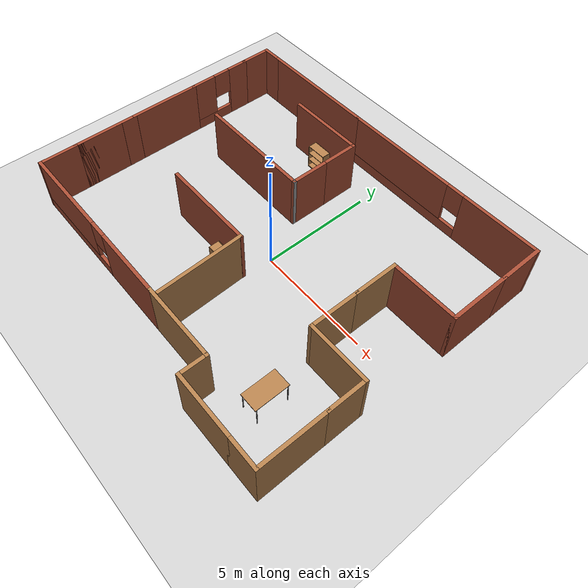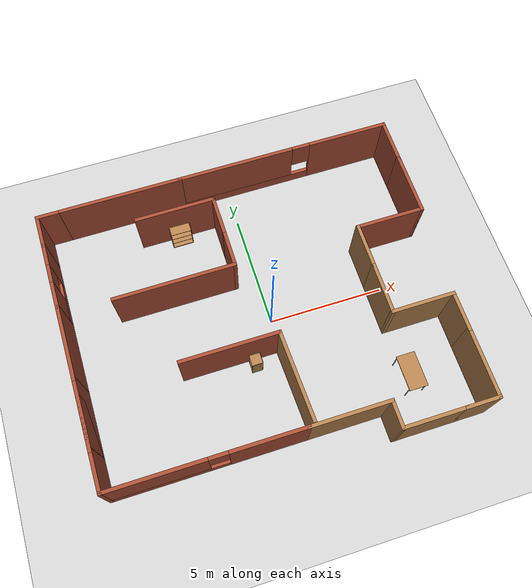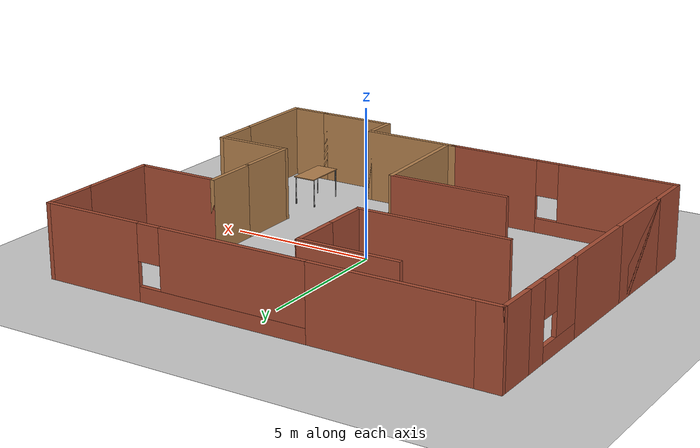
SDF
<sdf version="1.7">
 <world name="default">
  <light name="sun" type="directional">
   <pose>0 0 10 0 -0 0</pose>
   <diffuse>0.8 0.8 0.8 1</diffuse>
   <specular>0.2 0.2 0.2 1</specular>
   <attenuation>
    <range>1000</range>
    <constant>0.9</constant>
    <linear>0.01</linear>
    <quadratic>0.001</quadratic>
   </attenuation>
   <direction>-0.5 0.1 -0.9</direction>
   <spot><inner_angle>0</inner_angle><outer_angle>0</outer_angle><falloff>0</falloff></spot>
  </light>
  <model name="ground_plane">
   <static>1</static>
   <link name="link">
    <collision name="collision">
     <geometry><plane><normal>0 0 1</normal><size>100 100</size></plane></geometry>
     <surface>
      <contact><collide_bitmask>65535</collide_bitmask></contact>
      <friction><ode><mu>100</mu><mu2>50</mu2></ode></friction>
     </surface>
    </collision>
    <visual name="visual">
     <cast_shadows>0</cast_shadows>
     <geometry><plane><normal>0 0 1</normal><size>100 100</size></plane></geometry>
     <material>
      <script><uri>file://media/materials/scripts/gazebo.material</uri><name>Gazebo/Grey</name></script>
     </material>
    </visual>
   </link>
  </model>
  <gravity>0 0 -9.8</gravity>
  <magnetic_field>6e-06 2.3e-05 -4.2e-05</magnetic_field>
  <atmosphere type="adiabatic"/>
  <physics type="ode">
   <max_step_size>0.001</max_step_size>
   <real_time_factor>1</real_time_factor>
   <real_time_update_rate>1000</real_time_update_rate>
  </physics>
  <scene><ambient>0.4 0.4 0.4 1</ambient><background>0.7 0.7 0.7 1</background><shadows>false</shadows></scene>
  <spherical_coordinates>
   <surface_model>EARTH_WGS84</surface_model>
   <latitude_deg>0</latitude_deg>
   <longitude_deg>0</longitude_deg>
   <elevation>0</elevation>
   <heading_deg>0</heading_deg>
  </spherical_coordinates>
  <model name="cafe.world">
   <pose>-0.490708 0.112147 0 0 -0 0</pose>
   <link name="Wall_10">
    <collision name="Wall_10_Collision">
     <geometry><box><size>2.75 0.15 2.5</size></box></geometry>
     <pose>0 0 1.25 0 -0 0</pose>
    </collision>
    <visual name="Wall_10_Visual">
     <pose>0 0 1.25 0 -0 0</pose>
     <geometry><box><size>2.75 0.15 2.5</size></box></geometry>
     <material>
      <script><uri>file://media/materials/scripts/gazebo.material</uri><name>Gazebo/Wood</name></script>
      <ambient>1 1 1 1</ambient>
     </material>
     <meta><layer>0</layer></meta>
    </visual>
    <pose>4.875 -6.425 0 0 -0 0</pose>
   </link>
   <link name="Wall_12">
    <collision name="Wall_12_Collision">
     <geometry><box><size>1.5 0.15 2.5</size></box></geometry>
     <pose>0 0 1.25 0 -0 0</pose>
    </collision>
    <visual name="Wall_12_Visual">
     <pose>0 0 1.25 0 -0 0</pose>
     <geometry><box><size>1.5 0.15 2.5</size></box></geometry>
     <material>
      <script><uri>file://media/materials/scripts/gazebo.material</uri><name>Gazebo/Wood</name></script>
      <ambient>1 1 1 1</ambient>
     </material>
     <meta><layer>0</layer></meta>
    </visual>
    <pose>6.85 -6.425 0 0 -0 0</pose>
   </link>
   <link name="Wall_13">
    <collision name="Wall_13_Collision">
     <geometry><box><size>3 0.15 2.5</size></box></geometry>
     <pose>0 0 1.25 0 -0 0</pose>
    </collision>
    <visual name="Wall_13_Visual">
     <pose>0 0 1.25 0 -0 0</pose>
     <geometry><box><size>3 0.15 2.5</size></box></geometry>
     <material>
      <script><uri>file://media/materials/scripts/gazebo.material</uri><name>Gazebo/Wood</name></script>
      <ambient>1 1 1 1</ambient>
     </material>
     <meta><layer>0</layer></meta>
    </visual>
    <pose>7.525 -5 0 0 -0 1.5708</pose>
   </link>
   <link name="Wall_16">
    <collision name="Wall_16_Collision">
     <geometry><box><size>1.75 0.15 2.5</size></box></geometry>
     <pose>0 0 1.25 0 -0 0</pose>
    </collision>
    <visual name="Wall_16_Visual">
     <pose>0 0 1.25 0 -0 0</pose>
     <geometry><box><size>1.75 0.15 2.5</size></box></geometry>
     <material>
      <script><uri>file://media/materials/scripts/gazebo.material</uri><name>Gazebo/Wood</name></script>
      <ambient>1 1 1 1</ambient>
     </material>
     <meta><layer>0</layer></meta>
    </visual>
    <pose>7.525 -2.775 0 0 -0 1.5708</pose>
   </link>
   <link name="Wall_18">
    <collision name="Wall_18_Collision">
     <geometry><box><size>2.75 0.15 2.5</size></box></geometry>
     <pose>0 0 1.25 0 -0 0</pose>
    </collision>
    <visual name="Wall_18_Visual">
     <pose>0 0 1.25 0 -0 0</pose>
     <geometry><box><size>2.75 0.15 2.5</size></box></geometry>
     <material>
      <script><uri>file://media/materials/scripts/gazebo.material</uri><name>Gazebo/Wood</name></script>
      <ambient>1 1 1 1</ambient>
     </material>
     <meta><layer>0</layer></meta>
    </visual>
    <pose>6.225 -1.975 0 0 -0 3.14159</pose>
   </link>
   <link name="Wall_20">
    <collision name="Wall_20_Collision">
     <geometry><box><size>2.25 0.15 2.5</size></box></geometry>
     <pose>0 0 1.25 0 -0 0</pose>
    </collision>
    <visual name="Wall_20_Visual">
     <pose>0 0 1.25 0 -0 0</pose>
     <geometry><box><size>2.25 0.15 2.5</size></box></geometry>
     <material>
      <script><uri>file://media/materials/scripts/gazebo.material</uri><name>Gazebo/Wood</name></script>
      <ambient>1 1 1 1</ambient>
     </material>
     <meta><layer>0</layer></meta>
    </visual>
    <pose>4.925 -0.925 0 0 -0 1.5708</pose>
   </link>
   <link name="Wall_22">
    <collision name="Wall_22_Collision">
     <geometry><box><size>2 0.15 2.5</size></box></geometry>
     <pose>0 0 1.25 0 -0 0</pose>
    </collision>
    <visual name="Wall_22_Visual">
     <pose>0 0 1.25 0 -0 0</pose>
     <geometry><box><size>2 0.15 2.5</size></box></geometry>
     <material>
      <script><uri>file://media/materials/scripts/gazebo.material</uri><name>Gazebo/Wood</name></script>
      <ambient>1 1 1 1</ambient>
     </material>
     <meta><layer>0</layer></meta>
    </visual>
    <pose>4.925 1.05 0 0 -0 1.5708</pose>
   </link>
   <link name="Wall_24">
    <collision name="Wall_24_Collision">
     <geometry><box><size>3 0.15 2.5</size></box></geometry>
     <pose>0 0 1.25 0 -0 0</pose>
    </collision>
    <visual name="Wall_24_Visual">
     <pose>0 0 1.25 0 -0 0</pose>
     <geometry><box><size>3 0.15 2.5</size></box></geometry>
     <material>
      <script><uri>file://media/materials/scripts/gazebo.material</uri><name>Gazebo/Bricks</name></script>
      <ambient>1 1 1 1</ambient>
     </material>
     <meta><layer>0</layer></meta>
    </visual>
    <pose>6.35 1.975 0 0 -0 0</pose>
   </link>
   <link name="Wall_25">
    <collision name="Wall_25_Collision">
     <geometry><box><size>2.75 0.15 2.5</size></box></geometry>
     <pose>0 0 1.25 0 -0 0</pose>
    </collision>
    <visual name="Wall_25_Visual">
     <pose>0 0 1.25 0 -0 0</pose>
     <geometry><box><size>2.75 0.15 2.5</size></box></geometry>
     <material>
      <script><uri>file://media/materials/scripts/gazebo.material</uri><name>Gazebo/Bricks</name></script>
      <ambient>1 1 1 1</ambient>
     </material>
     <meta><layer>0</layer></meta>
    </visual>
    <pose>7.775 3.275 0 0 -0 1.5708</pose>
   </link>
   <link name="Wall_27">
    <collision name="Wall_27_Collision">
     <geometry><box><size>2 0.15 2.5</size></box></geometry>
     <pose>0 0 1.25 0 -0 0</pose>
    </collision>
    <visual name="Wall_27_Visual">
     <pose>0 0 1.25 0 -0 0</pose>
     <geometry><box><size>2 0.15 2.5</size></box></geometry>
     <material>
      <script><uri>file://media/materials/scripts/gazebo.material</uri><name>Gazebo/Bricks</name></script>
      <ambient>1 1 1 1</ambient>
     </material>
     <meta><layer>0</layer></meta>
    </visual>
    <pose>7.775 5.5 0 0 -0 1.5708</pose>
   </link>
   <link name="Wall_28">
    <pose>3.1 6.425 0 0 -0 3.14159</pose>
    <visual name="Wall_28_Visual_0">
     <pose>-2.97975 0 1.25 0 -0 0</pose>
     <geometry><box><size>3.5405 0.15 2.5</size></box></geometry>
     <material>
      <script><uri>file://media/materials/scripts/gazebo.material</uri><name>Gazebo/Bricks</name></script>
      <ambient>1 1 1 1</ambient>
     </material>
     <meta><layer>0</layer></meta>
    </visual>
    <collision name="Wall_28_Collision_0">
     <geometry><box><size>3.5405 0.15 2.5</size></box></geometry>
     <pose>-2.97975 0 1.25 0 -0 0</pose>
    </collision>
    <visual name="Wall_28_Visual_1">
     <pose>1.77025 0 0.25 0 -0 0</pose>
     <geometry><box><size>5.9595 0.15 0.5</size></box></geometry>
     <material>
      <script><uri>file://media/materials/scripts/gazebo.material</uri><name>Gazebo/Bricks</name></script>
      <ambient>1 1 1 1</ambient>
     </material>
     <meta><layer>0</layer></meta>
    </visual>
    <collision name="Wall_28_Collision_1">
     <geometry><box><size>5.9595 0.15 0.5</size></box></geometry>
     <pose>1.77025 0 0.25 0 -0 0</pose>
    </collision>
    <visual name="Wall_28_Visual_2">
     <pose>2.17025 0 1.5 0 -0 0</pose>
     <geometry><box><size>5.1595 0.15 2</size></box></geometry>
     <material>
      <script><uri>file://media/materials/scripts/gazebo.material</uri><name>Gazebo/Bricks</name></script>
      <ambient>1 1 1 1</ambient>
     </material>
     <meta><layer>0</layer></meta>
    </visual>
    <collision name="Wall_28_Collision_2">
     <geometry><box><size>5.1595 0.15 2</size></box></geometry>
     <pose>2.17025 0 1.5 0 -0 0</pose>
    </collision>
    <visual name="Wall_28_Visual_3">
     <pose>-0.8095 0 1.9 0 -0 0</pose>
     <geometry><box><size>0.8 0.15 1.2</size></box></geometry>
     <material>
      <script><uri>file://media/materials/scripts/gazebo.material</uri><name>Gazebo/Bricks</name></script>
      <ambient>1 1 1 1</ambient>
     </material>
     <meta><layer>0</layer></meta>
    </visual>
    <collision name="Wall_28_Collision_3">
     <geometry><box><size>0.8 0.15 1.2</size></box></geometry>
     <pose>-0.8095 0 1.9 0 -0 0</pose>
    </collision>
   </link>
   <link name="Wall_30">
    <collision name="Wall_30_Collision">
     <geometry><box><size>5.5 0.15 2.5</size></box></geometry>
     <pose>0 0 1.25 0 -0 0</pose>
    </collision>
    <visual name="Wall_30_Visual">
     <pose>0 0 1.25 0 -0 0</pose>
     <geometry><box><size>5.5 0.15 2.5</size></box></geometry>
     <material>
      <script><uri>file://media/materials/scripts/gazebo.material</uri><name>Gazebo/Bricks</name></script>
      <ambient>1 1 1 1</ambient>
     </material>
     <meta><layer>0</layer></meta>
    </visual>
    <pose>-4.25 6.425 0 0 -0 3.14159</pose>
   </link>
   <link name="Wall_32">
    <collision name="Wall_32_Collision">
     <geometry><box><size>1 0.15 2.5</size></box></geometry>
     <pose>0 0 1.25 0 -0 0</pose>
    </collision>
    <visual name="Wall_32_Visual">
     <pose>0 0 1.25 0 -0 0</pose>
     <geometry><box><size>1 0.15 2.5</size></box></geometry>
     <material>
      <script><uri>file://media/materials/scripts/gazebo.material</uri><name>Gazebo/Bricks</name></script>
      <ambient>1 1 1 1</ambient>
     </material>
     <meta><layer>0</layer></meta>
    </visual>
    <pose>-7.35 6.425 0 0 -0 3.14159</pose>
   </link>
   <link name="Wall_34">
    <collision name="Wall_34_Collision">
     <geometry><box><size>1.5 0.15 2.5</size></box></geometry>
     <pose>0 0 1.25 0 -0 0</pose>
    </collision>
    <visual name="Wall_34_Visual">
     <pose>0 0 1.25 0 -0 0</pose>
     <geometry><box><size>1.5 0.15 2.5</size></box></geometry>
     <material>
      <script><uri>file://media/materials/scripts/gazebo.material</uri><name>Gazebo/Bricks</name></script>
      <ambient>1 1 1 1</ambient>
     </material>
     <meta><layer>0</layer></meta>
    </visual>
    <pose>-7.775 5.75 0 0 -0 -1.5708</pose>
   </link>
   <link name="Wall_36">
    <pose>-7.775 3.65 0 0 -0 -1.5708</pose>
    <visual name="Wall_36_Visual_0">
     <pose>-0.99925 0 1.25 0 -0 0</pose>
     <geometry><box><size>1.0015 0.15 2.5</size></box></geometry>
     <material>
      <script><uri>file://media/materials/scripts/gazebo.material</uri><name>Gazebo/Bricks</name></script>
      <ambient>1 1 1 1</ambient>
     </material>
     <meta><layer>0</layer></meta>
    </visual>
    <collision name="Wall_36_Collision_0">
     <geometry><box><size>1.0015 0.15 2.5</size></box></geometry>
     <pose>-0.99925 0 1.25 0 -0 0</pose>
    </collision>
    <visual name="Wall_36_Visual_1">
     <pose>0.50075 0 0.25 0 -0 0</pose>
     <geometry><box><size>1.9985 0.15 0.5</size></box></geometry>
     <material>
      <script><uri>file://media/materials/scripts/gazebo.material</uri><name>Gazebo/Bricks</name></script>
      <ambient>1 1 1 1</ambient>
     </material>
     <meta><layer>0</layer></meta>
    </visual>
    <collision name="Wall_36_Collision_1">
     <geometry><box><size>1.9985 0.15 0.5</size></box></geometry>
     <pose>0.50075 0 0.25 0 -0 0</pose>
    </collision>
    <visual name="Wall_36_Visual_2">
     <pose>0.90075 0 1.5 0 -0 0</pose>
     <geometry><box><size>1.1985 0.15 2</size></box></geometry>
     <material>
      <script><uri>file://media/materials/scripts/gazebo.material</uri><name>Gazebo/Bricks</name></script>
      <ambient>1 1 1 1</ambient>
     </material>
     <meta><layer>0</layer></meta>
    </visual>
    <collision name="Wall_36_Collision_2">
     <geometry><box><size>1.1985 0.15 2</size></box></geometry>
     <pose>0.90075 0 1.5 0 -0 0</pose>
    </collision>
    <visual name="Wall_36_Visual_3">
     <pose>-0.0985 0 1.9 0 -0 0</pose>
     <geometry><box><size>0.8 0.15 1.2</size></box></geometry>
     <material>
      <script><uri>file://media/materials/scripts/gazebo.material</uri><name>Gazebo/Bricks</name></script>
      <ambient>1 1 1 1</ambient>
     </material>
     <meta><layer>0</layer></meta>
    </visual>
    <collision name="Wall_36_Collision_3">
     <geometry><box><size>0.8 0.15 1.2</size></box></geometry>
     <pose>-0.0985 0 1.9 0 -0 0</pose>
    </collision>
   </link>
   <link name="Wall_38">
    <collision name="Wall_38_Collision">
     <geometry><box><size>3.25 0.15 2.5</size></box></geometry>
     <pose>0 0 1.25 0 -0 0</pose>
    </collision>
    <visual name="Wall_38_Visual">
     <pose>0 0 1.25 0 -0 0</pose>
     <geometry><box><size>3.25 0.15 2.5</size></box></geometry>
     <material>
      <script><uri>file://media/materials/scripts/gazebo.material</uri><name>Gazebo/Bricks</name></script>
      <ambient>1 1 1 1</ambient>
     </material>
     <meta><layer>0</layer></meta>
    </visual>
    <pose>-7.775 0.675 0 0 -0 -1.5708</pose>
   </link>
   <link name="Wall_40">
    <pose>-7.775 -2.3 0 0 -0 -1.5708</pose>
    <visual name="Wall_40_Visual_0">
     <pose>0 0 1.25 0 -0 0</pose>
     <geometry><box><size>3 0.15 2.5</size></box></geometry>
     <material>
      <script><uri>file://media/materials/scripts/gazebo.material</uri><name>Gazebo/Bricks</name></script>
      <ambient>1 1 1 1</ambient>
     </material>
     <meta><layer>0</layer></meta>
    </visual>
    <collision name="Wall_40_Collision_0">
     <geometry><box><size>3 0.15 2.5</size></box></geometry>
     <pose>0 0 1.25 0 -0 0</pose>
    </collision>
    <visual name="Wall_40_Visual_1">
     <pose>0.37075 0 1.25 0 -0 0</pose>
     <geometry><box><size>2.2585 0.15 2.5</size></box></geometry>
     <material>
      <script><uri>file://media/materials/scripts/gazebo.material</uri><name>Gazebo/Bricks</name></script>
      <ambient>1 1 1 1</ambient>
     </material>
     <meta><layer>0</layer></meta>
    </visual>
    <collision name="Wall_40_Collision_1">
     <geometry><box><size>2.2585 0.15 2.5</size></box></geometry>
     <pose>0.37075 0 1.25 0 -0 0</pose>
    </collision>
   </link>
   <link name="Wall_45">
    <collision name="Wall_45_Collision">
     <geometry><box><size>1.75 0.15 2.5</size></box></geometry>
     <pose>0 0 1.25 0 -0 0</pose>
    </collision>
    <visual name="Wall_45_Visual">
     <pose>0 0 1.25 0 -0 0</pose>
     <geometry><box><size>1.75 0.15 2.5</size></box></geometry>
     <material>
      <script><uri>file://media/materials/scripts/gazebo.material</uri><name>Gazebo/Bricks</name></script>
      <ambient>1 1 1 1</ambient>
     </material>
     <meta><layer>0</layer></meta>
    </visual>
    <pose>-7.775 -4.525 0 0 -0 -1.5708</pose>
   </link>
   <link name="Wall_47">
    <pose>-3.765 -5.325 0 0 -0 3.14159</pose>
    <visual name="Wall_47_Visual_0">
     <pose>-2.47475 0 1.25 0 -0 0</pose>
     <geometry><box><size>3.2205 0.15 2.5</size></box></geometry>
     <material>
      <script><uri>file://media/materials/scripts/gazebo.material</uri><name>Gazebo/Bricks</name></script>
      <ambient>1 1 1 1</ambient>
     </material>
     <meta><layer>0</layer></meta>
    </visual>
    <collision name="Wall_47_Collision_0">
     <geometry><box><size>3.2205 0.15 2.5</size></box></geometry>
     <pose>-2.47475 0 1.25 0 -0 0</pose>
    </collision>
    <visual name="Wall_47_Visual_1">
     <pose>1.61025 0 0.25 0 -0 0</pose>
     <geometry><box><size>4.9495 0.15 0.5</size></box></geometry>
     <material>
      <script><uri>file://media/materials/scripts/gazebo.material</uri><name>Gazebo/Bricks</name></script>
      <ambient>1 1 1 1</ambient>
     </material>
     <meta><layer>0</layer></meta>
    </visual>
    <collision name="Wall_47_Collision_1">
     <geometry><box><size>4.9495 0.15 0.5</size></box></geometry>
     <pose>1.61025 0 0.25 0 -0 0</pose>
    </collision>
    <visual name="Wall_47_Visual_2">
     <pose>2.01025 0 1.5 0 -0 0</pose>
     <geometry><box><size>4.1495 0.15 2</size></box></geometry>
     <material>
      <script><uri>file://media/materials/scripts/gazebo.material</uri><name>Gazebo/Bricks</name></script>
      <ambient>1 1 1 1</ambient>
     </material>
     <meta><layer>0</layer></meta>
    </visual>
    <collision name="Wall_47_Collision_2">
     <geometry><box><size>4.1495 0.15 2</size></box></geometry>
     <pose>2.01025 0 1.5 0 -0 0</pose>
    </collision>
    <visual name="Wall_47_Visual_3">
     <pose>-0.4645 0 1.9 0 -0 0</pose>
     <geometry><box><size>0.8 0.15 1.2</size></box></geometry>
     <material>
      <script><uri>file://media/materials/scripts/gazebo.material</uri><name>Gazebo/Bricks</name></script>
      <ambient>1 1 1 1</ambient>
     </material>
     <meta><layer>0</layer></meta>
    </visual>
    <collision name="Wall_47_Collision_3">
     <geometry><box><size>0.8 0.15 1.2</size></box></geometry>
     <pose>-0.4645 0 1.9 0 -0 0</pose>
    </collision>
   </link>
   <link name="Wall_49">
    <collision name="Wall_49_Collision">
     <geometry><box><size>4.25 0.15 2.5</size></box></geometry>
     <pose>0 0 1.25 0 -0 0</pose>
    </collision>
    <visual name="Wall_49_Visual">
     <pose>0 0 1.25 0 -0 0</pose>
     <geometry><box><size>4.25 0.15 2.5</size></box></geometry>
     <material>
      <script><uri>file://media/materials/scripts/gazebo.material</uri><name>Gazebo/Bricks</name></script>
      <ambient>1 1 1 1</ambient>
     </material>
     <meta><layer>0</layer></meta>
    </visual>
    <pose>-1.685 -1.435 0 0 -0 0</pose>
   </link>
   <link name="Wall_50">
    <collision name="Wall_50_Collision">
     <geometry><box><size>3.88301 0.15 2.5</size></box></geometry>
     <pose>0 0 1.25 0 -0 0</pose>
    </collision>
    <visual name="Wall_50_Visual">
     <pose>0 0 1.25 0 -0 0</pose>
     <geometry><box><size>3.88301 0.15 2.5</size></box></geometry>
     <material>
      <script><uri>file://media/materials/scripts/gazebo.material</uri><name>Gazebo/Wood</name></script>
      <ambient>1 1 1 1</ambient>
     </material>
     <meta><layer>0</layer></meta>
    </visual>
    <pose>0.43 -3.3 0 0 -0 -1.5306</pose>
   </link>
   <link name="Wall_52">
    <collision name="Wall_52_Collision">
     <geometry><box><size>3.5 0.15 2.5</size></box></geometry>
     <pose>0 0 1.25 0 -0 0</pose>
    </collision>
    <visual name="Wall_52_Visual">
     <pose>0 0 1.25 0 -0 0</pose>
     <geometry><box><size>3.5 0.15 2.5</size></box></geometry>
     <material>
      <script><uri>file://media/materials/scripts/gazebo.material</uri><name>Gazebo/Bricks</name></script>
      <ambient>1 1 1 1</ambient>
     </material>
     <meta><layer>0</layer></meta>
    </visual>
    <pose>-2.15 5.075 0 0 -0 0</pose>
   </link>
   <link name="Wall_53">
    <collision name="Wall_53_Collision">
     <geometry><box><size>1.75 0.15 2.5</size></box></geometry>
     <pose>0 0 1.25 0 -0 0</pose>
    </collision>
    <visual name="Wall_53_Visual">
     <pose>0 0 1.25 0 -0 0</pose>
     <geometry><box><size>1.75 0.15 2.5</size></box></geometry>
     <material>
      <script><uri>file://media/materials/scripts/gazebo.material</uri><name>Gazebo/Bricks</name></script>
      <ambient>1 1 1 1</ambient>
     </material>
     <meta><layer>0</layer></meta>
    </visual>
    <pose>-0.475 4.275 0 0 -0 -1.5708</pose>
   </link>
   <link name="Wall_55">
    <collision name="Wall_55_Collision">
     <geometry><box><size>1.74013 0.15 2.5</size></box></geometry>
     <pose>0 0 1.25 0 -0 0</pose>
    </collision>
    <visual name="Wall_55_Visual">
     <pose>0 0 1.25 0 -0 0</pose>
     <geometry><box><size>1.74013 0.15 2.5</size></box></geometry>
     <material>
      <script><uri>file://media/materials/scripts/gazebo.material</uri><name>Gazebo/Bricks</name></script>
      <ambient>1 1 1 1</ambient>
     </material>
     <meta><layer>0</layer></meta>
    </visual>
    <pose>-0.475 2.68 0 0 -0 -1.5708</pose>
   </link>
   <link name="Wall_60">
    <collision name="Wall_60_Collision">
     <geometry><box><size>0.15 0.15 2.5</size></box></geometry>
     <pose>0 0 1.25 0 -0 0</pose>
    </collision>
    <visual name="Wall_60_Visual">
     <pose>0 0 1.25 0 -0 0</pose>
     <geometry><box><size>0.15 0.15 2.5</size></box></geometry>
     <material>
      <script><uri>file://media/materials/scripts/gazebo.material</uri><name>Gazebo/Grey</name></script>
      <ambient>1 1 1 1</ambient>
     </material>
     <meta><layer>0</layer></meta>
    </visual>
    <pose>-0.475 1.885 0 0 -0 0</pose>
   </link>
   <link name="Wall_62">
    <collision name="Wall_62_Collision">
     <geometry><box><size>5.25 0.15 2.5</size></box></geometry>
     <pose>0 0 1.25 0 -0 0</pose>
    </collision>
    <visual name="Wall_62_Visual">
     <pose>0 0 1.25 0 -0 0</pose>
     <geometry><box><size>5.25 0.15 2.5</size></box></geometry>
     <material>
      <script><uri>file://media/materials/scripts/gazebo.material</uri><name>Gazebo/Bricks</name></script>
      <ambient>1 1 1 1</ambient>
     </material>
     <meta><layer>0</layer></meta>
    </visual>
    <pose>-3.035 1.885 0 0 -0 3.14159</pose>
   </link>
   <link name="Wall_8">
    <collision name="Wall_8_Collision">
     <geometry><box><size>3.48 0.15 2.5</size></box></geometry>
     <pose>0 0 1.25 0 -0 0</pose>
    </collision>
    <visual name="Wall_8_Visual">
     <pose>0 0 1.25 0 -0 0</pose>
     <geometry><box><size>3.48 0.15 2.5</size></box></geometry>
     <material>
      <script><uri>file://media/materials/scripts/gazebo.material</uri><name>Gazebo/Wood</name></script>
      <ambient>1 1 1 1</ambient>
     </material>
     <meta><layer>0</layer></meta>
    </visual>
    <pose>1.91 -5.325 0 0 -0 0</pose>
   </link>
   <link name="Wall_9">
    <collision name="Wall_9_Collision">
     <geometry><box><size>1.25 0.15 2.5</size></box></geometry>
     <pose>0 0 1.25 0 -0 0</pose>
    </collision>
    <visual name="Wall_9_Visual">
     <pose>0 0 1.25 0 -0 0</pose>
     <geometry><box><size>1.25 0.15 2.5</size></box></geometry>
     <material>
      <script><uri>file://media/materials/scripts/gazebo.material</uri><name>Gazebo/Wood</name></script>
      <ambient>1 1 1 1</ambient>
     </material>
     <meta><layer>0</layer></meta>
    </visual>
    <pose>3.575 -5.875 0 0 -0 -1.5708</pose>
   </link>
   <static>1</static>
  </model>
  <model name="bookshelf">
   <static>1</static>
   <link name="link">
    <inertial><mass>1</mass></inertial>
    <collision name="back">
     <pose>0 0.005 0.6 0 -0 0</pose>
     <geometry><box><size>0.9 0.01 1.2</size></box></geometry>
    </collision>
    <visual name="visual1">
     <pose>0 0.005 0.6 0 -0 0</pose>
     <geometry><box><size>0.9 0.01 1.2</size></box></geometry>
     <material>
      <script><uri>file://media/materials/scripts/gazebo.material</uri><name>Gazebo/Wood</name></script>
     </material>
    </visual>
    <collision name="left_side">
     <pose>0.45 -0.195 0.6 0 -0 0</pose>
     <geometry><box><size>0.02 0.4 1.2</size></box></geometry>
    </collision>
    <visual name="visual2">
     <pose>0.45 -0.195 0.6 0 -0 0</pose>
     <geometry><box><size>0.02 0.4 1.2</size></box></geometry>
     <material>
      <script><uri>file://media/materials/scripts/gazebo.material</uri><name>Gazebo/Wood</name></script>
     </material>
    </visual>
    <collision name="right_side">
     <pose>-0.45 -0.195 0.6 0 -0 0</pose>
     <geometry><box><size>0.02 0.4 1.2</size></box></geometry>
    </collision>
    <visual name="visual3">
     <pose>-0.45 -0.195 0.6 0 -0 0</pose>
     <geometry><box><size>0.02 0.4 1.2</size></box></geometry>
     <material>
      <script><uri>file://media/materials/scripts/gazebo.material</uri><name>Gazebo/Wood</name></script>
     </material>
    </visual>
    <collision name="bottom">
     <pose>0 -0.195 0.03 0 -0 0</pose>
     <geometry><box><size>0.88 0.4 0.06</size></box></geometry>
    </collision>
    <visual name="visual4">
     <pose>0 -0.195 0.03 0 -0 0</pose>
     <geometry><box><size>0.88 0.4 0.06</size></box></geometry>
     <material>
      <script><uri>file://media/materials/scripts/gazebo.material</uri><name>Gazebo/Wood</name></script>
     </material>
    </visual>
    <collision name="top">
     <pose>0 -0.195 1.19 0 -0 0</pose>
     <geometry><box><size>0.88 0.4 0.02</size></box></geometry>
    </collision>
    <visual name="visual5">
     <pose>0 -0.195 1.19 0 -0 0</pose>
     <geometry><box><size>0.88 0.4 0.02</size></box></geometry>
     <material>
      <script><uri>file://media/materials/scripts/gazebo.material</uri><name>Gazebo/Wood</name></script>
     </material>
    </visual>
    <collision name="low_shelf">
     <pose>0 -0.195 0.43 0 -0 0</pose>
     <geometry><box><size>0.88 0.4 0.02</size></box></geometry>
    </collision>
    <visual name="visual6">
     <pose>0 -0.195 0.43 0 -0 0</pose>
     <geometry><box><size>0.88 0.4 0.02</size></box></geometry>
     <material>
      <script><uri>file://media/materials/scripts/gazebo.material</uri><name>Gazebo/Wood</name></script>
     </material>
    </visual>
    <collision name="high_shelf">
     <pose>0 -0.195 0.8 0 -0 0</pose>
     <geometry><box><size>0.88 0.4 0.02</size></box></geometry>
    </collision>
    <visual name="visual7">
     <pose>0 -0.195 0.8 0 -0 0</pose>
     <geometry><box><size>0.88 0.4 0.02</size></box></geometry>
     <material>
      <script><uri>file://media/materials/scripts/gazebo.material</uri><name>Gazebo/Wood</name></script>
     </material>
    </visual>
   </link>
   <pose>-2.62891 5.09124 0 0 -0 0</pose>
  </model>
  <model name="cabinet">
   <static>1</static>
   <link name="cabinet_bottom_plate">
    <inertial>
     <pose>0 0 -1 0 -0 0</pose>
     <inertia><ixx>2.05</ixx><ixy>0</ixy><ixz>0</ixz><iyy>2.05</iyy><iyz>0</iyz><izz>2.05</izz></inertia>
     <mass>25</mass>
    </inertial>
    <collision name="cabinet_bottom_plate_geom">
     <pose>0 0 0.01 0 -0 0</pose>
     <geometry><box><size>0.45 0.45 0.02</size></box></geometry>
    </collision>
    <visual name="cabinet_bottom_plate_geom_visual">
     <pose>0 0 0.01 0 -0 0</pose>
     <geometry><box><size>0.45 0.45 0.02</size></box></geometry>
     <material>
      <script><uri>file://media/materials/scripts/gazebo.material</uri><name>Gazebo/Wood</name></script>
     </material>
    </visual>
    <collision name="cabinet_bottom_plate_geom_cabinet_back_plate">
     <pose>0.235 0 0.51 0 -0 0</pose>
     <geometry><box><size>0.02 0.45 1.02</size></box></geometry>
    </collision>
    <visual name="cabinet_bottom_plate_geom_cabinet_back_plate_visual">
     <pose>0.235 0 0.51 0 -0 0</pose>
     <geometry><box><size>0.02 0.45 1.02</size></box></geometry>
     <material>
      <script><uri>file://media/materials/scripts/gazebo.material</uri><name>Gazebo/Wood</name></script>
     </material>
    </visual>
    <collision name="cabinet_bottom_plate_geom_cabinet_left_plate">
     <pose>0 0.235 0.51 0 -0 0</pose>
     <geometry><box><size>0.45 0.02 1.02</size></box></geometry>
    </collision>
    <visual name="cabinet_bottom_plate_geom_cabinet_left_plate_visual">
     <pose>0 0.235 0.51 0 -0 0</pose>
     <geometry><box><size>0.45 0.02 1.02</size></box></geometry>
     <material>
      <script><uri>file://media/materials/scripts/gazebo.material</uri><name>Gazebo/Wood</name></script>
     </material>
    </visual>
    <collision name="cabinet_bottom_plate_geom_cabinet_middle_plate">
     <pose>0 0 0.51 0 -0 0</pose>
     <geometry><box><size>0.45 0.45 0.02</size></box></geometry>
    </collision>
    <visual name="cabinet_bottom_plate_geom_cabinet_middle_plate_visual">
     <pose>0 0 0.51 0 -0 0</pose>
     <geometry><box><size>0.45 0.45 0.02</size></box></geometry>
     <material>
      <script><uri>file://media/materials/scripts/gazebo.material</uri><name>Gazebo/Wood</name></script>
     </material>
    </visual>
    <collision name="cabinet_bottom_plate_geom_cabinet_right_plate">
     <pose>0 -0.235 0.51 0 -0 0</pose>
     <geometry><box><size>0.45 0.02 1.02</size></box></geometry>
    </collision>
    <visual name="cabinet_bottom_plate_geom_cabinet_right_plate_visual">
     <pose>0 -0.235 0.51 0 -0 0</pose>
     <geometry><box><size>0.45 0.02 1.02</size></box></geometry>
     <material>
      <script><uri>file://media/materials/scripts/gazebo.material</uri><name>Gazebo/Wood</name></script>
     </material>
    </visual>
    <collision name="cabinet_bottom_plate_geom_cabinet_top_plate">
     <pose>0 0 1.01 0 -0 0</pose>
     <geometry><box><size>0.45 0.45 0.02</size></box></geometry>
    </collision>
    <visual name="cabinet_bottom_plate_geom_cabinet_top_plate_visual">
     <pose>0 0 1.01 0 -0 0</pose>
     <geometry><box><size>0.45 0.45 0.02</size></box></geometry>
     <material>
      <script><uri>file://media/materials/scripts/gazebo.material</uri><name>Gazebo/Wood</name></script>
     </material>
    </visual>
   </link>
   <pose>-1.23232 -1.68825 0 0 -0 0</pose>
  </model>
  <model name="table">
   <static>1</static>
   <link name="link">
    <collision name="surface">
     <pose>0 0 1 0 -0 0</pose>
     <geometry><box><size>1.5 0.8 0.03</size></box></geometry>
     <surface><friction><ode><mu>0.6</mu><mu2>0.6</mu2></ode></friction></surface>
    </collision>
    <visual name="visual1">
     <pose>0 0 1 0 -0 0</pose>
     <geometry><box><size>1.5 0.8 0.03</size></box></geometry>
     <material>
      <script><uri>file://media/materials/scripts/gazebo.material</uri><name>Gazebo/Wood</name></script>
     </material>
    </visual>
    <collision name="front_left_leg">
     <pose>0.68 0.38 0.5 0 -0 0</pose>
     <geometry><cylinder><radius>0.02</radius><length>1</length></cylinder></geometry>
    </collision>
    <visual name="front_left_leg">
     <pose>0.68 0.38 0.5 0 -0 0</pose>
     <geometry><cylinder><radius>0.02</radius><length>1</length></cylinder></geometry>
     <material>
      <script><uri>file://media/materials/scripts/gazebo.material</uri><name>Gazebo/Grey</name></script>
     </material>
    </visual>
    <collision name="front_right_leg">
     <pose>0.68 -0.38 0.5 0 -0 0</pose>
     <geometry><cylinder><radius>0.02</radius><length>1</length></cylinder></geometry>
    </collision>
    <visual name="front_right_leg">
     <pose>0.68 -0.38 0.5 0 -0 0</pose>
     <geometry><cylinder><radius>0.02</radius><length>1</length></cylinder></geometry>
     <material>
      <script><uri>file://media/materials/scripts/gazebo.material</uri><name>Gazebo/Grey</name></script>
     </material>
    </visual>
    <collision name="back_right_leg">
     <pose>-0.68 -0.38 0.5 0 -0 0</pose>
     <geometry><cylinder><radius>0.02</radius><length>1</length></cylinder></geometry>
    </collision>
    <visual name="back_right_leg">
     <pose>-0.68 -0.38 0.5 0 -0 0</pose>
     <geometry><cylinder><radius>0.02</radius><length>1</length></cylinder></geometry>
     <material>
      <script><uri>file://media/materials/scripts/gazebo.material</uri><name>Gazebo/Grey</name></script>
     </material>
    </visual>
    <collision name="back_left_leg">
     <pose>-0.68 0.38 0.5 0 -0 0</pose>
     <geometry><cylinder><radius>0.02</radius><length>1</length></cylinder></geometry>
    </collision>
    <visual name="back_left_leg">
     <pose>-0.68 0.38 0.5 0 -0 0</pose>
     <geometry><cylinder><radius>0.02</radius><length>1</length></cylinder></geometry>
     <material>
      <script><uri>file://media/materials/scripts/gazebo.material</uri><name>Gazebo/Grey</name></script>
     </material>
    </visual>
   </link>
   <pose>4.66728 -4.06633 0 0 -0 1.57328</pose>
  </model>
 </world>
</sdf>
